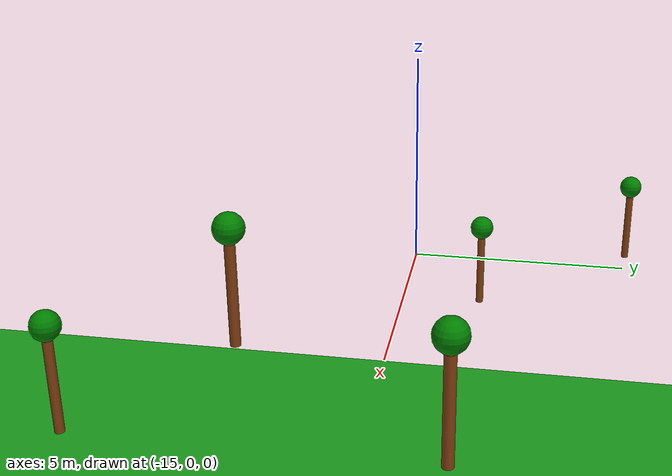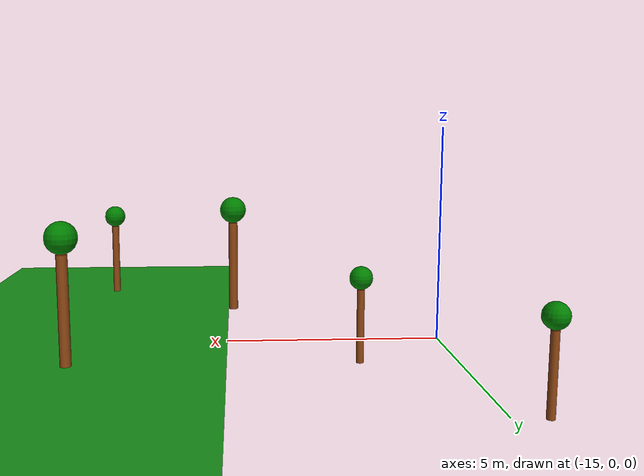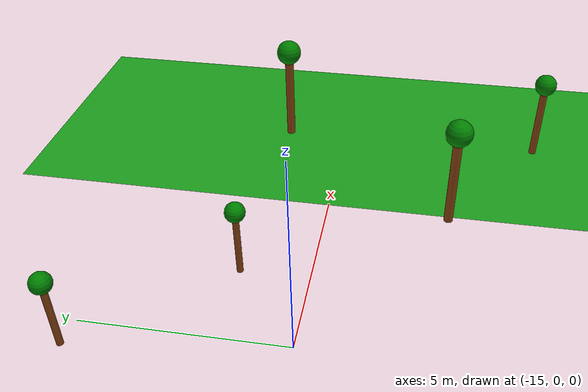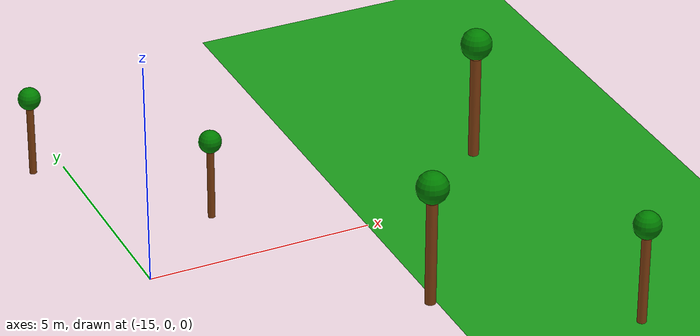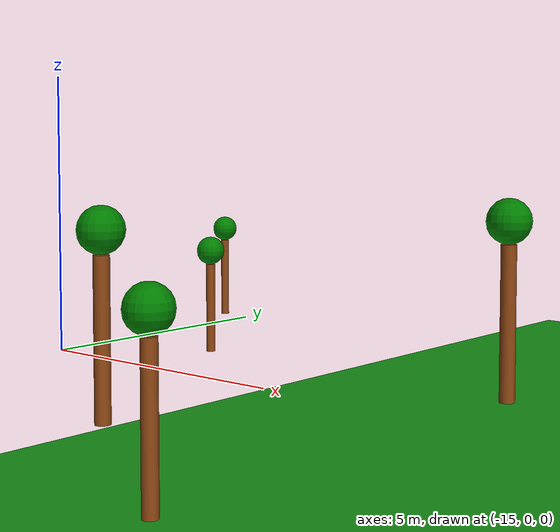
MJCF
<mujoco model="forest"><asset><material name="bark" rgba="0.55 0.27 0.07 1" /><material name="leaves" rgba="0.0 0.5 0.0 1" /><material name="grass" rgba="0.1 0.6 0.1 1" /></asset><worldbody><geom name="ground" type="plane" size="10 10 0.1" material="grass" rgba="0.1 0.6 0.1 1" pos="0 0 0" /></worldbody><worldbody><body name="tree_-6.557320694512905_-5.66455968083279" pos="-6.557320694512905 -5.66455968083279 0"><geom type="cylinder" size="0.1 1.0" fromto="0 0 0 0 0 2" material="bark" /><geom type="sphere" size="0.3" pos="0 0 2.3" material="leaves" /></body><body name="tree_-6.596317462609209_1.7176892898734843" pos="-6.596317462609209 1.7176892898734843 0"><geom type="cylinder" size="0.12 1.2" fromto="0 0 0 0 0 2.4" material="bark" /><geom type="sphere" size="0.35" pos="0 0 2.75" material="leaves" /></body><body name="tree_-10.13426273423567_-3.231103399071658" pos="-10.13426273423567 -3.231103399071658 0"><geom type="cylinder" size="0.12 1.2" fromto="0 0 0 0 0 2.4" material="bark" /><geom type="sphere" size="0.35" pos="0 0 2.75" material="leaves" /></body><body name="tree_-12.866464089869226_1.7435636856315657" pos="-12.866464089869226 1.7435636856315657 0"><geom type="cylinder" size="0.08 0.8" fromto="0 0 0 0 0 1.6" material="bark" /><geom type="sphere" size="0.25" pos="0 0 1.85" material="leaves" /></body><body name="tree_-15.679388471957587_5.069452272647013" pos="-15.679388471957587 5.069452272647013 0"><geom type="cylinder" size="0.08 0.8" fromto="0 0 0 0 0 1.6" material="bark" /><geom type="sphere" size="0.25" pos="0 0 1.85" material="leaves" /></body></worldbody></mujoco>
